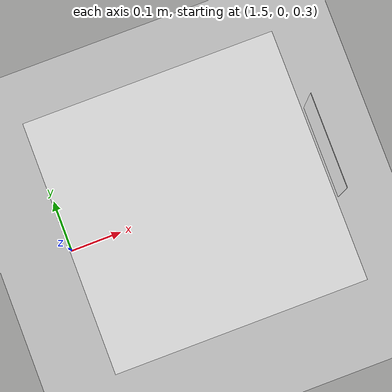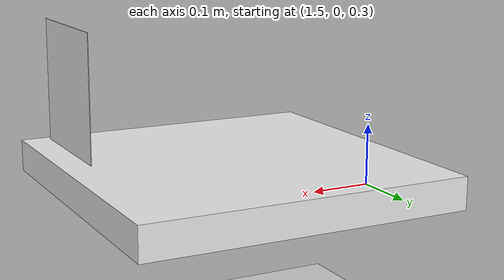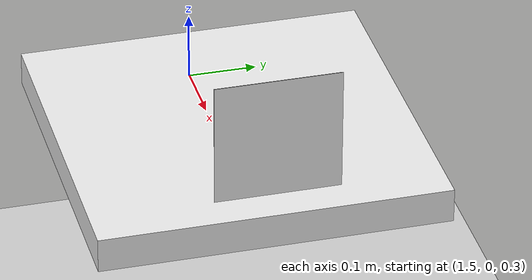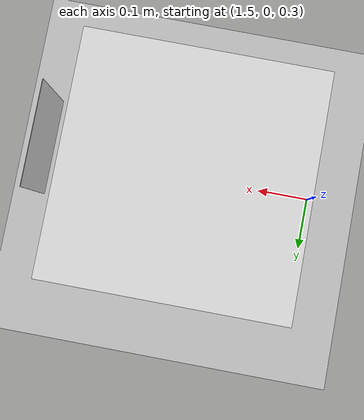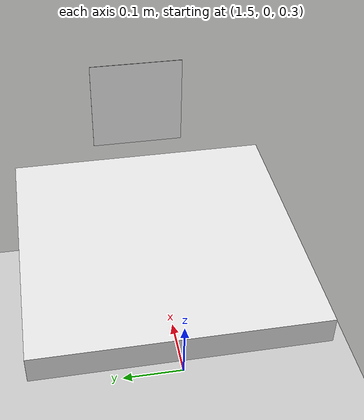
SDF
<?xml version="1.0"?>

<sdf version="1.6">
  <world name="default">

    <!-- Tweak to run at higher or lower speeds -->
    <physics name="normal" type="ode">
      <real_time_update_rate>1000</real_time_update_rate>
      <max_step_size>0.001</max_step_size>
    </physics>

    <!-- Ground plane -->
    <include>
      <uri>model://ground_plane</uri>
    </include>

    <!-- Lighting -->
    <include>
      <uri>model://sun</uri>
    </include>

    <!-- ArUco markers -->
    <model name="marker0">
      <include>
        <static>true</static>
        <uri>model://marker_0</uri>
      </include>
      <pose>2 0 0.5 0 -1.5707963267948966 0</pose>
    </model>

  </world>
</sdf>

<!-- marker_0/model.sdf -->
<sdf version='1.5'>
  <model name='marker_0'>

    <link name='marker'>
      <pose frame=''>0 0 0 0 0 0</pose>
      <visual name='visual'>
        <geometry>
          <box>
            <size>0.1778 0.1778 1e-5</size>
          </box>
        </geometry>
        <material>
          <script>
            <uri>model://marker_0/materials/scripts</uri>
            <uri>model://marker_0/materials/textures</uri>
            <name>ArucoVisualMarker0/Marker</name>
          </script>
          <ambient>1 1 1 1</ambient>
          <diffuse>1 1 1 1</diffuse>
          <specular>0 0 0 1</specular>
          <emissive>1 1 1 0</emissive>
          <shader type='vertex'>
            <normal_map>__default__</normal_map>
          </shader>
        </material>
        <pose frame=''>0 0 0 0 0 0</pose>
        <cast_shadows>1</cast_shadows>
        <transparency>0</transparency>
      </visual>
      <collision name='collision'>
        <laser_retro>0</laser_retro>
        <max_contacts>10</max_contacts>
        <pose frame=''>0 0 0 0 0 0</pose>
        <geometry>
          <box>
            <size>0.1778 0.1778 1e-05</size>
          </box>
        </geometry>
      </collision>
    </link>

    <link name='marker_pad'>
      <pose frame='marker'>0 0 -1e-3 0 0 0</pose>
      <visual name='visual'>
        <geometry>
          <box>
            <size>0.1778 0.1778 1e-5</size>
          </box>
        </geometry>
        <material>
          <lighting>1</lighting>
          <script>
            <uri>file://media/materials/scripts/gazebo.material</uri>
            <name>Gazebo/White</name>
          </script>
          <ambient>0.3 0.3 0.3 1</ambient>
          <diffuse>0.7 0.7 0.7 1</diffuse>
          <specular>0.01 0.01 0.01 1</specular>
          <emissive>1 1 1 0</emissive>
          <shader type='vertex'>
            <normal_map>__default__</normal_map>
          </shader>
        </material>
        <cast_shadows>1</cast_shadows>
        <transparency>0</transparency>
      </visual>
      <collision name='collision'>
        <laser_retro>0</laser_retro>
        <max_contacts>10</max_contacts>
        <pose frame=''>0 0 0 0 0 0</pose>
        <geometry>
          <box>
            <size>0.1778 0.1778 1e-5</size>
          </box>
        </geometry>
      </collision>
    </link>

     <link name='marker_platform'>
      <pose frame='marker'>-0.15 0 0.25 0 1.57 0</pose>
      <visual name='visual'>
        <geometry>
          <box>
            <size>0.5 0.5 0.05</size>
          </box>
        </geometry>
        <material>
          <lighting>1</lighting>
          <script>
            <uri>file://media/materials/scripts/gazebo.material</uri>
            <name>Gazebo/White</name>
          </script>
          <ambient>0.3 0.3 0.3 1</ambient>
          <diffuse>0.7 0.7 0.7 1</diffuse>
          <specular>0.01 0.01 0.01 1</specular>
          <emissive>1 1 1 0</emissive>
          <shader type='vertex'>
            <normal_map>__default__</normal_map>
          </shader>
        </material>
        <cast_shadows>1</cast_shadows>
        <transparency>0</transparency>
      </visual>
      <collision name='collision'>
        <laser_retro>0</laser_retro>
        <max_contacts>10</max_contacts>
        <pose frame=''>0 0 0 0 0 0</pose>
        <geometry>
          <box>
            <size>0.5 0.5 0.05</size>
          </box>
        </geometry>
      </collision>
    </link>

    <joint name='marker_JOINT_marker_pad' type='revolute'>
      <parent>marker</parent>
      <child>marker_pad</child>
      <pose frame=''>0 0 0 0 0 0</pose>
      <axis>
        <xyz>0 0 1</xyz>
        <limit>
          <upper>0</upper>
          <lower>0</lower>
        </limit>
      </axis>
    </joint>

    <static>1</static>
    <allow_auto_disable>1</allow_auto_disable>

  </model>
</sdf>
